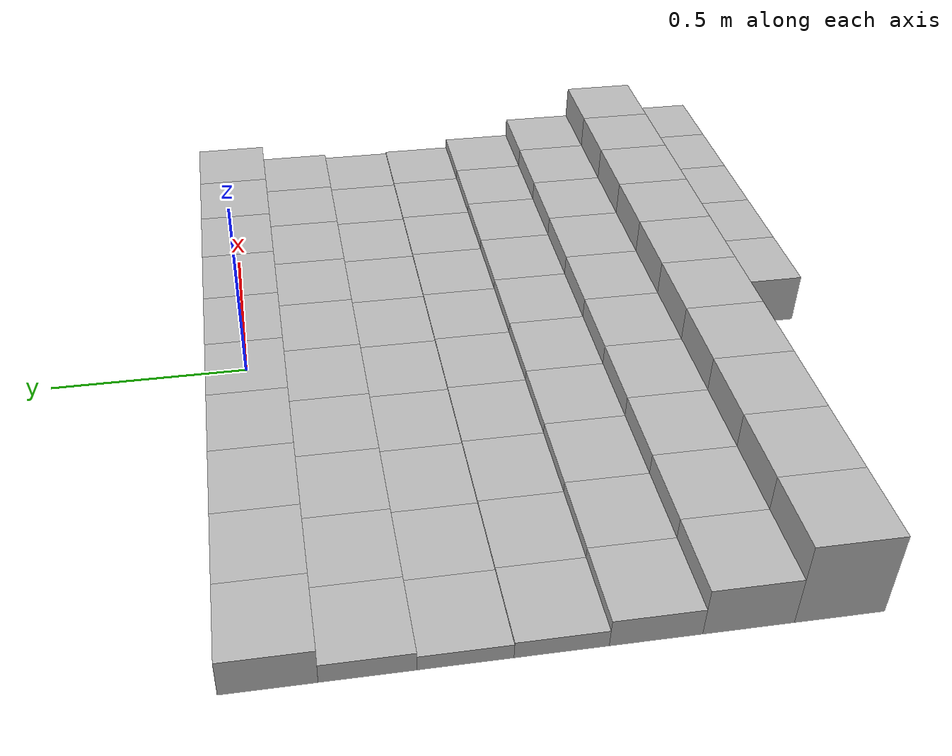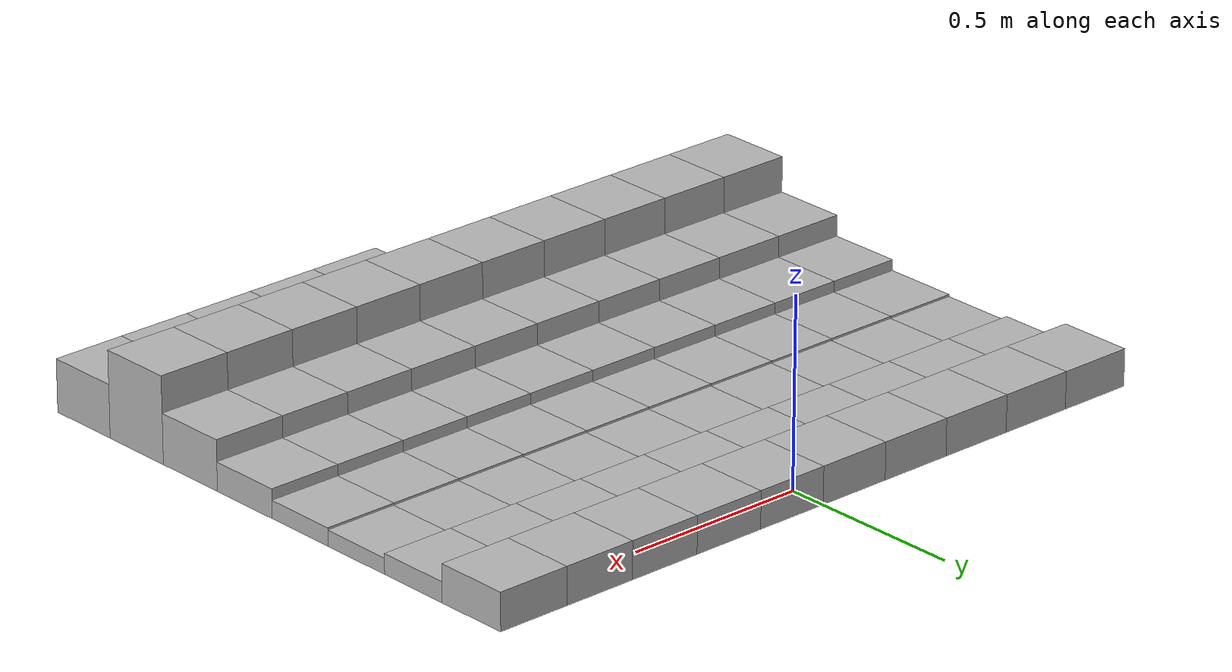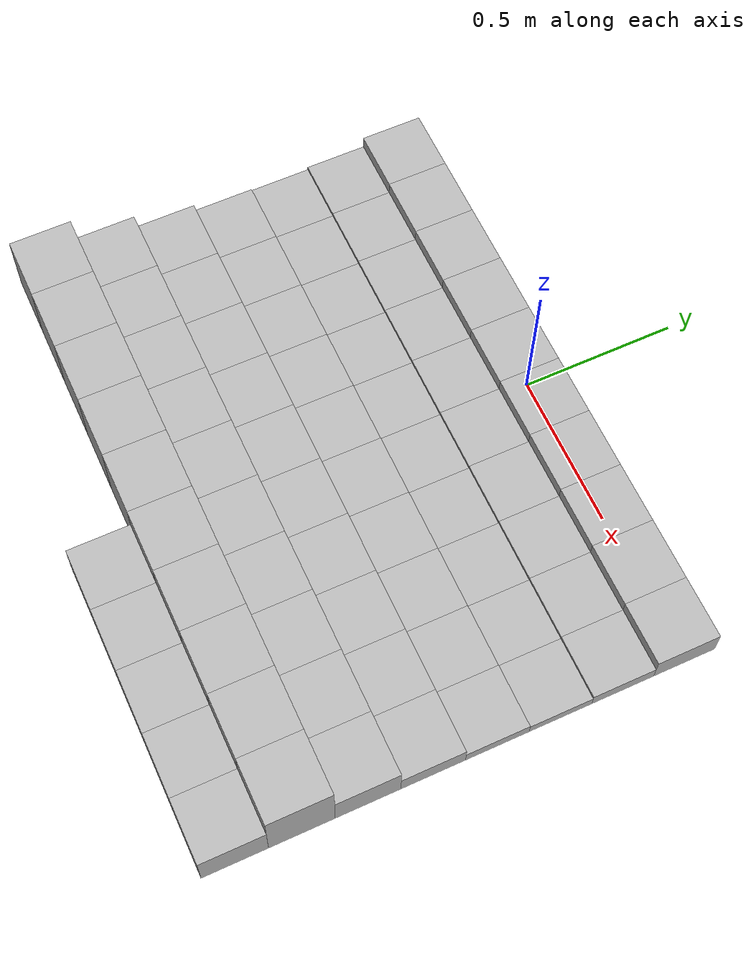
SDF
<sdf version="1.6">
 <model name="Terrain">
  <static>true</static>
  <link name="box_0_0">
   <pose>-0.9 0.0 0.0494981901267 0 0 0</pose>
   <inertial>
    <mass>1.0</mass>
    <inertia><ixx>0.0</ixx><ixy>0.0</ixy><ixz>0.0</ixz><iyy>0.0</iyy><iyz>0.0</iyz><izz>0.0</izz></inertia>
   </inertial>
   <collision name="collision"><geometry><box><size>0.2 0.2 0.0989963802534</size></box></geometry></collision>
   <visual name="visual"><geometry><box><size>0.2 0.2 0.0989963802534</size></box></geometry></visual>
  </link>
  <link name="box_0_1">
   <pose>-0.7 0.0 0.0494981901267 0 0 0</pose>
   <inertial>
    <mass>1.0</mass>
    <inertia><ixx>0.0</ixx><ixy>0.0</ixy><ixz>0.0</ixz><iyy>0.0</iyy><iyz>0.0</iyz><izz>0.0</izz></inertia>
   </inertial>
   <collision name="collision"><geometry><box><size>0.2 0.2 0.0989963802534</size></box></geometry></collision>
   <visual name="visual"><geometry><box><size>0.2 0.2 0.0989963802534</size></box></geometry></visual>
  </link>
  <link name="box_0_2">
   <pose>-0.5 0.0 0.0494981901267 0 0 0</pose>
   <inertial>
    <mass>1.0</mass>
    <inertia><ixx>0.0</ixx><ixy>0.0</ixy><ixz>0.0</ixz><iyy>0.0</iyy><iyz>0.0</iyz><izz>0.0</izz></inertia>
   </inertial>
   <collision name="collision"><geometry><box><size>0.2 0.2 0.0989963802534</size></box></geometry></collision>
   <visual name="visual"><geometry><box><size>0.2 0.2 0.0989963802534</size></box></geometry></visual>
  </link>
  <link name="box_0_3">
   <pose>-0.3 0.0 0.0494981901267 0 0 0</pose>
   <inertial>
    <mass>1.0</mass>
    <inertia><ixx>0.0</ixx><ixy>0.0</ixy><ixz>0.0</ixz><iyy>0.0</iyy><iyz>0.0</iyz><izz>0.0</izz></inertia>
   </inertial>
   <collision name="collision"><geometry><box><size>0.2 0.2 0.0989963802534</size></box></geometry></collision>
   <visual name="visual"><geometry><box><size>0.2 0.2 0.0989963802534</size></box></geometry></visual>
  </link>
  <link name="box_0_4">
   <pose>-0.1 0.0 0.0494981901267 0 0 0</pose>
   <inertial>
    <mass>1.0</mass>
    <inertia><ixx>0.0</ixx><ixy>0.0</ixy><ixz>0.0</ixz><iyy>0.0</iyy><iyz>0.0</iyz><izz>0.0</izz></inertia>
   </inertial>
   <collision name="collision"><geometry><box><size>0.2 0.2 0.0989963802534</size></box></geometry></collision>
   <visual name="visual"><geometry><box><size>0.2 0.2 0.0989963802534</size></box></geometry></visual>
  </link>
  <link name="box_0_5">
   <pose>0.1 0.0 0.0494981901267 0 0 0</pose>
   <inertial>
    <mass>1.0</mass>
    <inertia><ixx>0.0</ixx><ixy>0.0</ixy><ixz>0.0</ixz><iyy>0.0</iyy><iyz>0.0</iyz><izz>0.0</izz></inertia>
   </inertial>
   <collision name="collision"><geometry><box><size>0.2 0.2 0.0989963802534</size></box></geometry></collision>
   <visual name="visual"><geometry><box><size>0.2 0.2 0.0989963802534</size></box></geometry></visual>
  </link>
  <link name="box_0_6">
   <pose>0.3 0.0 0.0494981901267 0 0 0</pose>
   <inertial>
    <mass>1.0</mass>
    <inertia><ixx>0.0</ixx><ixy>0.0</ixy><ixz>0.0</ixz><iyy>0.0</iyy><iyz>0.0</iyz><izz>0.0</izz></inertia>
   </inertial>
   <collision name="collision"><geometry><box><size>0.2 0.2 0.0989963802534</size></box></geometry></collision>
   <visual name="visual"><geometry><box><size>0.2 0.2 0.0989963802534</size></box></geometry></visual>
  </link>
  <link name="box_0_7">
   <pose>0.5 0.0 0.0494981901267 0 0 0</pose>
   <inertial>
    <mass>1.0</mass>
    <inertia><ixx>0.0</ixx><ixy>0.0</ixy><ixz>0.0</ixz><iyy>0.0</iyy><iyz>0.0</iyz><izz>0.0</izz></inertia>
   </inertial>
   <collision name="collision"><geometry><box><size>0.2 0.2 0.0989963802534</size></box></geometry></collision>
   <visual name="visual"><geometry><box><size>0.2 0.2 0.0989963802534</size></box></geometry></visual>
  </link>
  <link name="box_0_8">
   <pose>0.7 0.0 0.0494981901267 0 0 0</pose>
   <inertial>
    <mass>1.0</mass>
    <inertia><ixx>0.0</ixx><ixy>0.0</ixy><ixz>0.0</ixz><iyy>0.0</iyy><iyz>0.0</iyz><izz>0.0</izz></inertia>
   </inertial>
   <collision name="collision"><geometry><box><size>0.2 0.2 0.0989963802534</size></box></geometry></collision>
   <visual name="visual"><geometry><box><size>0.2 0.2 0.0989963802534</size></box></geometry></visual>
  </link>
  <link name="box_0_9">
   <pose>0.9 0.0 0.0494981901267 0 0 0</pose>
   <inertial>
    <mass>1.0</mass>
    <inertia><ixx>0.0</ixx><ixy>0.0</ixy><ixz>0.0</ixz><iyy>0.0</iyy><iyz>0.0</iyz><izz>0.0</izz></inertia>
   </inertial>
   <collision name="collision"><geometry><box><size>0.2 0.2 0.0989963802534</size></box></geometry></collision>
   <visual name="visual"><geometry><box><size>0.2 0.2 0.0989963802534</size></box></geometry></visual>
  </link>
  <link name="box_1_0">
   <pose>-0.9 -0.2 0.0265864980613 0 0 0</pose>
   <inertial>
    <mass>1.0</mass>
    <inertia><ixx>0.0</ixx><ixy>0.0</ixy><ixz>0.0</ixz><iyy>0.0</iyy><iyz>0.0</iyz><izz>0.0</izz></inertia>
   </inertial>
   <collision name="collision"><geometry><box><size>0.2 0.2 0.0531729961226</size></box></geometry></collision>
   <visual name="visual"><geometry><box><size>0.2 0.2 0.0531729961226</size></box></geometry></visual>
  </link>
  <link name="box_1_1">
   <pose>-0.7 -0.2 0.0265864980613 0 0 0</pose>
   <inertial>
    <mass>1.0</mass>
    <inertia><ixx>0.0</ixx><ixy>0.0</ixy><ixz>0.0</ixz><iyy>0.0</iyy><iyz>0.0</iyz><izz>0.0</izz></inertia>
   </inertial>
   <collision name="collision"><geometry><box><size>0.2 0.2 0.0531729961226</size></box></geometry></collision>
   <visual name="visual"><geometry><box><size>0.2 0.2 0.0531729961226</size></box></geometry></visual>
  </link>
  <link name="box_1_2">
   <pose>-0.5 -0.2 0.0265864980613 0 0 0</pose>
   <inertial>
    <mass>1.0</mass>
    <inertia><ixx>0.0</ixx><ixy>0.0</ixy><ixz>0.0</ixz><iyy>0.0</iyy><iyz>0.0</iyz><izz>0.0</izz></inertia>
   </inertial>
   <collision name="collision"><geometry><box><size>0.2 0.2 0.0531729961226</size></box></geometry></collision>
   <visual name="visual"><geometry><box><size>0.2 0.2 0.0531729961226</size></box></geometry></visual>
  </link>
  <link name="box_1_3">
   <pose>-0.3 -0.2 0.0265864980613 0 0 0</pose>
   <inertial>
    <mass>1.0</mass>
    <inertia><ixx>0.0</ixx><ixy>0.0</ixy><ixz>0.0</ixz><iyy>0.0</iyy><iyz>0.0</iyz><izz>0.0</izz></inertia>
   </inertial>
   <collision name="collision"><geometry><box><size>0.2 0.2 0.0531729961226</size></box></geometry></collision>
   <visual name="visual"><geometry><box><size>0.2 0.2 0.0531729961226</size></box></geometry></visual>
  </link>
  <link name="box_1_4">
   <pose>-0.1 -0.2 0.0265864980613 0 0 0</pose>
   <inertial>
    <mass>1.0</mass>
    <inertia><ixx>0.0</ixx><ixy>0.0</ixy><ixz>0.0</ixz><iyy>0.0</iyy><iyz>0.0</iyz><izz>0.0</izz></inertia>
   </inertial>
   <collision name="collision"><geometry><box><size>0.2 0.2 0.0531729961226</size></box></geometry></collision>
   <visual name="visual"><geometry><box><size>0.2 0.2 0.0531729961226</size></box></geometry></visual>
  </link>
  <link name="box_1_5">
   <pose>0.1 -0.2 0.0265864980613 0 0 0</pose>
   <inertial>
    <mass>1.0</mass>
    <inertia><ixx>0.0</ixx><ixy>0.0</ixy><ixz>0.0</ixz><iyy>0.0</iyy><iyz>0.0</iyz><izz>0.0</izz></inertia>
   </inertial>
   <collision name="collision"><geometry><box><size>0.2 0.2 0.0531729961226</size></box></geometry></collision>
   <visual name="visual"><geometry><box><size>0.2 0.2 0.0531729961226</size></box></geometry></visual>
  </link>
  <link name="box_1_6">
   <pose>0.3 -0.2 0.0265864980613 0 0 0</pose>
   <inertial>
    <mass>1.0</mass>
    <inertia><ixx>0.0</ixx><ixy>0.0</ixy><ixz>0.0</ixz><iyy>0.0</iyy><iyz>0.0</iyz><izz>0.0</izz></inertia>
   </inertial>
   <collision name="collision"><geometry><box><size>0.2 0.2 0.0531729961226</size></box></geometry></collision>
   <visual name="visual"><geometry><box><size>0.2 0.2 0.0531729961226</size></box></geometry></visual>
  </link>
  <link name="box_1_7">
   <pose>0.5 -0.2 0.0265864980613 0 0 0</pose>
   <inertial>
    <mass>1.0</mass>
    <inertia><ixx>0.0</ixx><ixy>0.0</ixy><ixz>0.0</ixz><iyy>0.0</iyy><iyz>0.0</iyz><izz>0.0</izz></inertia>
   </inertial>
   <collision name="collision"><geometry><box><size>0.2 0.2 0.0531729961226</size></box></geometry></collision>
   <visual name="visual"><geometry><box><size>0.2 0.2 0.0531729961226</size></box></geometry></visual>
  </link>
  <link name="box_1_8">
   <pose>0.7 -0.2 0.0265864980613 0 0 0</pose>
   <inertial>
    <mass>1.0</mass>
    <inertia><ixx>0.0</ixx><ixy>0.0</ixy><ixz>0.0</ixz><iyy>0.0</iyy><iyz>0.0</iyz><izz>0.0</izz></inertia>
   </inertial>
   <collision name="collision"><geometry><box><size>0.2 0.2 0.0531729961226</size></box></geometry></collision>
   <visual name="visual"><geometry><box><size>0.2 0.2 0.0531729961226</size></box></geometry></visual>
  </link>
  <link name="box_1_9">
   <pose>0.9 -0.2 0.0265864980613 0 0 0</pose>
   <inertial>
    <mass>1.0</mass>
    <inertia><ixx>0.0</ixx><ixy>0.0</ixy><ixz>0.0</ixz><iyy>0.0</iyy><iyz>0.0</iyz><izz>0.0</izz></inertia>
   </inertial>
   <collision name="collision"><geometry><box><size>0.2 0.2 0.0531729961226</size></box></geometry></collision>
   <visual name="visual"><geometry><box><size>0.2 0.2 0.0531729961226</size></box></geometry></visual>
  </link>
  <link name="box_2_0">
   <pose>-0.9 -0.4 0.020622142568 0 0 0</pose>
   <inertial>
    <mass>1.0</mass>
    <inertia><ixx>0.0</ixx><ixy>0.0</ixy><ixz>0.0</ixz><iyy>0.0</iyy><iyz>0.0</iyz><izz>0.0</izz></inertia>
   </inertial>
   <collision name="collision"><geometry><box><size>0.2 0.2 0.041244285136</size></box></geometry></collision>
   <visual name="visual"><geometry><box><size>0.2 0.2 0.041244285136</size></box></geometry></visual>
  </link>
  <link name="box_2_1">
   <pose>-0.7 -0.4 0.020622142568 0 0 0</pose>
   <inertial>
    <mass>1.0</mass>
    <inertia><ixx>0.0</ixx><ixy>0.0</ixy><ixz>0.0</ixz><iyy>0.0</iyy><iyz>0.0</iyz><izz>0.0</izz></inertia>
   </inertial>
   <collision name="collision"><geometry><box><size>0.2 0.2 0.041244285136</size></box></geometry></collision>
   <visual name="visual"><geometry><box><size>0.2 0.2 0.041244285136</size></box></geometry></visual>
  </link>
  <link name="box_2_2">
   <pose>-0.5 -0.4 0.020622142568 0 0 0</pose>
   <inertial>
    <mass>1.0</mass>
    <inertia><ixx>0.0</ixx><ixy>0.0</ixy><ixz>0.0</ixz><iyy>0.0</iyy><iyz>0.0</iyz><izz>0.0</izz></inertia>
   </inertial>
   <collision name="collision"><geometry><box><size>0.2 0.2 0.041244285136</size></box></geometry></collision>
   <visual name="visual"><geometry><box><size>0.2 0.2 0.041244285136</size></box></geometry></visual>
  </link>
  <link name="box_2_3">
   <pose>-0.3 -0.4 0.020622142568 0 0 0</pose>
   <inertial>
    <mass>1.0</mass>
    <inertia><ixx>0.0</ixx><ixy>0.0</ixy><ixz>0.0</ixz><iyy>0.0</iyy><iyz>0.0</iyz><izz>0.0</izz></inertia>
   </inertial>
   <collision name="collision"><geometry><box><size>0.2 0.2 0.041244285136</size></box></geometry></collision>
   <visual name="visual"><geometry><box><size>0.2 0.2 0.041244285136</size></box></geometry></visual>
  </link>
  <link name="box_2_4">
   <pose>-0.1 -0.4 0.020622142568 0 0 0</pose>
   <inertial>
    <mass>1.0</mass>
    <inertia><ixx>0.0</ixx><ixy>0.0</ixy><ixz>0.0</ixz><iyy>0.0</iyy><iyz>0.0</iyz><izz>0.0</izz></inertia>
   </inertial>
   <collision name="collision"><geometry><box><size>0.2 0.2 0.041244285136</size></box></geometry></collision>
   <visual name="visual"><geometry><box><size>0.2 0.2 0.041244285136</size></box></geometry></visual>
  </link>
  <link name="box_2_5">
   <pose>0.1 -0.4 0.020622142568 0 0 0</pose>
   <inertial>
    <mass>1.0</mass>
    <inertia><ixx>0.0</ixx><ixy>0.0</ixy><ixz>0.0</ixz><iyy>0.0</iyy><iyz>0.0</iyz><izz>0.0</izz></inertia>
   </inertial>
   <collision name="collision"><geometry><box><size>0.2 0.2 0.041244285136</size></box></geometry></collision>
   <visual name="visual"><geometry><box><size>0.2 0.2 0.041244285136</size></box></geometry></visual>
  </link>
  <link name="box_2_6">
   <pose>0.3 -0.4 0.020622142568 0 0 0</pose>
   <inertial>
    <mass>1.0</mass>
    <inertia><ixx>0.0</ixx><ixy>0.0</ixy><ixz>0.0</ixz><iyy>0.0</iyy><iyz>0.0</iyz><izz>0.0</izz></inertia>
   </inertial>
   <collision name="collision"><geometry><box><size>0.2 0.2 0.041244285136</size></box></geometry></collision>
   <visual name="visual"><geometry><box><size>0.2 0.2 0.041244285136</size></box></geometry></visual>
  </link>
  <link name="box_2_7">
   <pose>0.5 -0.4 0.020622142568 0 0 0</pose>
   <inertial>
    <mass>1.0</mass>
    <inertia><ixx>0.0</ixx><ixy>0.0</ixy><ixz>0.0</ixz><iyy>0.0</iyy><iyz>0.0</iyz><izz>0.0</izz></inertia>
   </inertial>
   <collision name="collision"><geometry><box><size>0.2 0.2 0.041244285136</size></box></geometry></collision>
   <visual name="visual"><geometry><box><size>0.2 0.2 0.041244285136</size></box></geometry></visual>
  </link>
  <link name="box_2_8">
   <pose>0.7 -0.4 0.020622142568 0 0 0</pose>
   <inertial>
    <mass>1.0</mass>
    <inertia><ixx>0.0</ixx><ixy>0.0</ixy><ixz>0.0</ixz><iyy>0.0</iyy><iyz>0.0</iyz><izz>0.0</izz></inertia>
   </inertial>
   <collision name="collision"><geometry><box><size>0.2 0.2 0.041244285136</size></box></geometry></collision>
   <visual name="visual"><geometry><box><size>0.2 0.2 0.041244285136</size></box></geometry></visual>
  </link>
  <link name="box_2_9">
   <pose>0.9 -0.4 0.020622142568 0 0 0</pose>
   <inertial>
    <mass>1.0</mass>
    <inertia><ixx>0.0</ixx><ixy>0.0</ixy><ixz>0.0</ixz><iyy>0.0</iyy><iyz>0.0</iyz><izz>0.0</izz></inertia>
   </inertial>
   <collision name="collision"><geometry><box><size>0.2 0.2 0.041244285136</size></box></geometry></collision>
   <visual name="visual"><geometry><box><size>0.2 0.2 0.041244285136</size></box></geometry></visual>
  </link>
  <link name="box_3_0">
   <pose>-0.9 -0.6 0.023450300779 0 0 0</pose>
   <inertial>
    <mass>1.0</mass>
    <inertia><ixx>0.0</ixx><ixy>0.0</ixy><ixz>0.0</ixz><iyy>0.0</iyy><iyz>0.0</iyz><izz>0.0</izz></inertia>
   </inertial>
   <collision name="collision"><geometry><box><size>0.2 0.2 0.0469006015579</size></box></geometry></collision>
   <visual name="visual"><geometry><box><size>0.2 0.2 0.0469006015579</size></box></geometry></visual>
  </link>
  <link name="box_3_1">
   <pose>-0.7 -0.6 0.023450300779 0 0 0</pose>
   <inertial>
    <mass>1.0</mass>
    <inertia><ixx>0.0</ixx><ixy>0.0</ixy><ixz>0.0</ixz><iyy>0.0</iyy><iyz>0.0</iyz><izz>0.0</izz></inertia>
   </inertial>
   <collision name="collision"><geometry><box><size>0.2 0.2 0.0469006015579</size></box></geometry></collision>
   <visual name="visual"><geometry><box><size>0.2 0.2 0.0469006015579</size></box></geometry></visual>
  </link>
  <link name="box_3_2">
   <pose>-0.5 -0.6 0.023450300779 0 0 0</pose>
   <inertial>
    <mass>1.0</mass>
    <inertia><ixx>0.0</ixx><ixy>0.0</ixy><ixz>0.0</ixz><iyy>0.0</iyy><iyz>0.0</iyz><izz>0.0</izz></inertia>
   </inertial>
   <collision name="collision"><geometry><box><size>0.2 0.2 0.0469006015579</size></box></geometry></collision>
   <visual name="visual"><geometry><box><size>0.2 0.2 0.0469006015579</size></box></geometry></visual>
  </link>
  <link name="box_3_3">
   <pose>-0.3 -0.6 0.023450300779 0 0 0</pose>
   <inertial>
    <mass>1.0</mass>
    <inertia><ixx>0.0</ixx><ixy>0.0</ixy><ixz>0.0</ixz><iyy>0.0</iyy><iyz>0.0</iyz><izz>0.0</izz></inertia>
   </inertial>
   <collision name="collision"><geometry><box><size>0.2 0.2 0.0469006015579</size></box></geometry></collision>
   <visual name="visual"><geometry><box><size>0.2 0.2 0.0469006015579</size></box></geometry></visual>
  </link>
  <link name="box_3_4">
   <pose>-0.1 -0.6 0.023450300779 0 0 0</pose>
   <inertial>
    <mass>1.0</mass>
    <inertia><ixx>0.0</ixx><ixy>0.0</ixy><ixz>0.0</ixz><iyy>0.0</iyy><iyz>0.0</iyz><izz>0.0</izz></inertia>
   </inertial>
   <collision name="collision"><geometry><box><size>0.2 0.2 0.0469006015579</size></box></geometry></collision>
   <visual name="visual"><geometry><box><size>0.2 0.2 0.0469006015579</size></box></geometry></visual>
  </link>
  <link name="box_3_5">
   <pose>0.1 -0.6 0.023450300779 0 0 0</pose>
   <inertial>
    <mass>1.0</mass>
    <inertia><ixx>0.0</ixx><ixy>0.0</ixy><ixz>0.0</ixz><iyy>0.0</iyy><iyz>0.0</iyz><izz>0.0</izz></inertia>
   </inertial>
   <collision name="collision"><geometry><box><size>0.2 0.2 0.0469006015579</size></box></geometry></collision>
   <visual name="visual"><geometry><box><size>0.2 0.2 0.0469006015579</size></box></geometry></visual>
  </link>
  <link name="box_3_6">
   <pose>0.3 -0.6 0.023450300779 0 0 0</pose>
   <inertial>
    <mass>1.0</mass>
    <inertia><ixx>0.0</ixx><ixy>0.0</ixy><ixz>0.0</ixz><iyy>0.0</iyy><iyz>0.0</iyz><izz>0.0</izz></inertia>
   </inertial>
   <collision name="collision"><geometry><box><size>0.2 0.2 0.0469006015579</size></box></geometry></collision>
   <visual name="visual"><geometry><box><size>0.2 0.2 0.0469006015579</size></box></geometry></visual>
  </link>
  <link name="box_3_7">
   <pose>0.5 -0.6 0.023450300779 0 0 0</pose>
   <inertial>
    <mass>1.0</mass>
    <inertia><ixx>0.0</ixx><ixy>0.0</ixy><ixz>0.0</ixz><iyy>0.0</iyy><iyz>0.0</iyz><izz>0.0</izz></inertia>
   </inertial>
   <collision name="collision"><geometry><box><size>0.2 0.2 0.0469006015579</size></box></geometry></collision>
   <visual name="visual"><geometry><box><size>0.2 0.2 0.0469006015579</size></box></geometry></visual>
  </link>
  <link name="box_3_8">
   <pose>0.7 -0.6 0.023450300779 0 0 0</pose>
   <inertial>
    <mass>1.0</mass>
    <inertia><ixx>0.0</ixx><ixy>0.0</ixy><ixz>0.0</ixz><iyy>0.0</iyy><iyz>0.0</iyz><izz>0.0</izz></inertia>
   </inertial>
   <collision name="collision"><geometry><box><size>0.2 0.2 0.0469006015579</size></box></geometry></collision>
   <visual name="visual"><geometry><box><size>0.2 0.2 0.0469006015579</size></box></geometry></visual>
  </link>
  <link name="box_3_9">
   <pose>0.9 -0.6 0.023450300779 0 0 0</pose>
   <inertial>
    <mass>1.0</mass>
    <inertia><ixx>0.0</ixx><ixy>0.0</ixy><ixz>0.0</ixz><iyy>0.0</iyy><iyz>0.0</iyz><izz>0.0</izz></inertia>
   </inertial>
   <collision name="collision"><geometry><box><size>0.2 0.2 0.0469006015579</size></box></geometry></collision>
   <visual name="visual"><geometry><box><size>0.2 0.2 0.0469006015579</size></box></geometry></visual>
  </link>
  <link name="box_4_0">
   <pose>-0.9 -0.8 0.0380624653209 0 0 0</pose>
   <inertial>
    <mass>1.0</mass>
    <inertia><ixx>0.0</ixx><ixy>0.0</ixy><ixz>0.0</ixz><iyy>0.0</iyy><iyz>0.0</iyz><izz>0.0</izz></inertia>
   </inertial>
   <collision name="collision"><geometry><box><size>0.2 0.2 0.0761249306417</size></box></geometry></collision>
   <visual name="visual"><geometry><box><size>0.2 0.2 0.0761249306417</size></box></geometry></visual>
  </link>
  <link name="box_4_1">
   <pose>-0.7 -0.8 0.0380624653209 0 0 0</pose>
   <inertial>
    <mass>1.0</mass>
    <inertia><ixx>0.0</ixx><ixy>0.0</ixy><ixz>0.0</ixz><iyy>0.0</iyy><iyz>0.0</iyz><izz>0.0</izz></inertia>
   </inertial>
   <collision name="collision"><geometry><box><size>0.2 0.2 0.0761249306417</size></box></geometry></collision>
   <visual name="visual"><geometry><box><size>0.2 0.2 0.0761249306417</size></box></geometry></visual>
  </link>
  <link name="box_4_2">
   <pose>-0.5 -0.8 0.0380624653209 0 0 0</pose>
   <inertial>
    <mass>1.0</mass>
    <inertia><ixx>0.0</ixx><ixy>0.0</ixy><ixz>0.0</ixz><iyy>0.0</iyy><iyz>0.0</iyz><izz>0.0</izz></inertia>
   </inertial>
   <collision name="collision"><geometry><box><size>0.2 0.2 0.0761249306417</size></box></geometry></collision>
   <visual name="visual"><geometry><box><size>0.2 0.2 0.0761249306417</size></box></geometry></visual>
  </link>
  <link name="box_4_3">
   <pose>-0.3 -0.8 0.0380624653209 0 0 0</pose>
   <inertial>
    <mass>1.0</mass>
    <inertia><ixx>0.0</ixx><ixy>0.0</ixy><ixz>0.0</ixz><iyy>0.0</iyy><iyz>0.0</iyz><izz>0.0</izz></inertia>
   </inertial>
   <collision name="collision"><geometry><box><size>0.2 0.2 0.0761249306417</size></box></geometry></collision>
   <visual name="visual"><geometry><box><size>0.2 0.2 0.0761249306417</size></box></geometry></visual>
  </link>
  <link name="box_4_4">
   <pose>-0.1 -0.8 0.0380624653209 0 0 0</pose>
   <inertial>
    <mass>1.0</mass>
    <inertia><ixx>0.0</ixx><ixy>0.0</ixy><ixz>0.0</ixz><iyy>0.0</iyy><iyz>0.0</iyz><izz>0.0</izz></inertia>
   </inertial>
   <collision name="collision"><geometry><box><size>0.2 0.2 0.0761249306417</size></box></geometry></collision>
   <visual name="visual"><geometry><box><size>0.2 0.2 0.0761249306417</size></box></geometry></visual>
  </link>
  <link name="box_4_5">
   <pose>0.1 -0.8 0.0380624653209 0 0 0</pose>
   <inertial>
    <mass>1.0</mass>
    <inertia><ixx>0.0</ixx><ixy>0.0</ixy><ixz>0.0</ixz><iyy>0.0</iyy><iyz>0.0</iyz><izz>0.0</izz></inertia>
   </inertial>
   <collision name="collision"><geometry><box><size>0.2 0.2 0.0761249306417</size></box></geometry></collision>
   <visual name="visual"><geometry><box><size>0.2 0.2 0.0761249306417</size></box></geometry></visual>
  </link>
  <link name="box_4_6">
   <pose>0.3 -0.8 0.0380624653209 0 0 0</pose>
   <inertial>
    <mass>1.0</mass>
    <inertia><ixx>0.0</ixx><ixy>0.0</ixy><ixz>0.0</ixz><iyy>0.0</iyy><iyz>0.0</iyz><izz>0.0</izz></inertia>
   </inertial>
   <collision name="collision"><geometry><box><size>0.2 0.2 0.0761249306417</size></box></geometry></collision>
   <visual name="visual"><geometry><box><size>0.2 0.2 0.0761249306417</size></box></geometry></visual>
  </link>
  <link name="box_4_7">
   <pose>0.5 -0.8 0.0380624653209 0 0 0</pose>
   <inertial>
    <mass>1.0</mass>
    <inertia><ixx>0.0</ixx><ixy>0.0</ixy><ixz>0.0</ixz><iyy>0.0</iyy><iyz>0.0</iyz><izz>0.0</izz></inertia>
   </inertial>
   <collision name="collision"><geometry><box><size>0.2 0.2 0.0761249306417</size></box></geometry></collision>
   <visual name="visual"><geometry><box><size>0.2 0.2 0.0761249306417</size></box></geometry></visual>
  </link>
  <link name="box_4_8">
   <pose>0.7 -0.8 0.0380624653209 0 0 0</pose>
   <inertial>
    <mass>1.0</mass>
    <inertia><ixx>0.0</ixx><ixy>0.0</ixy><ixz>0.0</ixz><iyy>0.0</iyy><iyz>0.0</iyz><izz>0.0</izz></inertia>
   </inertial>
   <collision name="collision"><geometry><box><size>0.2 0.2 0.0761249306417</size></box></geometry></collision>
   <visual name="visual"><geometry><box><size>0.2 0.2 0.0761249306417</size></box></geometry></visual>
  </link>
  <link name="box_4_9">
   <pose>0.9 -0.8 0.0380624653209 0 0 0</pose>
   <inertial>
    <mass>1.0</mass>
    <inertia><ixx>0.0</ixx><ixy>0.0</ixy><ixz>0.0</ixz><iyy>0.0</iyy><iyz>0.0</iyz><izz>0.0</izz></inertia>
   </inertial>
   <collision name="collision"><geometry><box><size>0.2 0.2 0.0761249306417</size></box></geometry></collision>
   <visual name="visual"><geometry><box><size>0.2 0.2 0.0761249306417</size></box></geometry></visual>
  </link>
  <link name="box_5_0">
   <pose>-0.9 -1.0 0.0664592636338 0 0 0</pose>
   <inertial>
    <mass>1.0</mass>
    <inertia><ixx>0.0</ixx><ixy>0.0</ixy><ixz>0.0</ixz><iyy>0.0</iyy><iyz>0.0</iyz><izz>0.0</izz></inertia>
   </inertial>
   <collision name="collision"><geometry><box><size>0.2 0.2 0.132918527268</size></box></geometry></collision>
   <visual name="visual"><geometry><box><size>0.2 0.2 0.132918527268</size></box></geometry></visual>
  </link>
  <link name="box_5_1">
   <pose>-0.7 -1.0 0.0664592636338 0 0 0</pose>
   <inertial>
    <mass>1.0</mass>
    <inertia><ixx>0.0</ixx><ixy>0.0</ixy><ixz>0.0</ixz><iyy>0.0</iyy><iyz>0.0</iyz><izz>0.0</izz></inertia>
   </inertial>
   <collision name="collision"><geometry><box><size>0.2 0.2 0.132918527268</size></box></geometry></collision>
   <visual name="visual"><geometry><box><size>0.2 0.2 0.132918527268</size></box></geometry></visual>
  </link>
  <link name="box_5_2">
   <pose>-0.5 -1.0 0.0664592636338 0 0 0</pose>
   <inertial>
    <mass>1.0</mass>
    <inertia><ixx>0.0</ixx><ixy>0.0</ixy><ixz>0.0</ixz><iyy>0.0</iyy><iyz>0.0</iyz><izz>0.0</izz></inertia>
   </inertial>
   <collision name="collision"><geometry><box><size>0.2 0.2 0.132918527268</size></box></geometry></collision>
   <visual name="visual"><geometry><box><size>0.2 0.2 0.132918527268</size></box></geometry></visual>
  </link>
  <link name="box_5_3">
   <pose>-0.3 -1.0 0.0664592636338 0 0 0</pose>
   <inertial>
    <mass>1.0</mass>
    <inertia><ixx>0.0</ixx><ixy>0.0</ixy><ixz>0.0</ixz><iyy>0.0</iyy><iyz>0.0</iyz><izz>0.0</izz></inertia>
   </inertial>
   <collision name="collision"><geometry><box><size>0.2 0.2 0.132918527268</size></box></geometry></collision>
   <visual name="visual"><geometry><box><size>0.2 0.2 0.132918527268</size></box></geometry></visual>
  </link>
  <link name="box_5_4">
   <pose>-0.1 -1.0 0.0664592636338 0 0 0</pose>
   <inertial>
    <mass>1.0</mass>
    <inertia><ixx>0.0</ixx><ixy>0.0</ixy><ixz>0.0</ixz><iyy>0.0</iyy><iyz>0.0</iyz><izz>0.0</izz></inertia>
   </inertial>
   <collision name="collision"><geometry><box><size>0.2 0.2 0.132918527268</size></box></geometry></collision>
   <visual name="visual"><geometry><box><size>0.2 0.2 0.132918527268</size></box></geometry></visual>
  </link>
  <link name="box_5_5">
   <pose>0.1 -1.0 0.0664592636338 0 0 0</pose>
   <inertial>
    <mass>1.0</mass>
    <inertia><ixx>0.0</ixx><ixy>0.0</ixy><ixz>0.0</ixz><iyy>0.0</iyy><iyz>0.0</iyz><izz>0.0</izz></inertia>
   </inertial>
   <collision name="collision"><geometry><box><size>0.2 0.2 0.132918527268</size></box></geometry></collision>
   <visual name="visual"><geometry><box><size>0.2 0.2 0.132918527268</size></box></geometry></visual>
  </link>
  <link name="box_5_6">
   <pose>0.3 -1.0 0.0664592636338 0 0 0</pose>
   <inertial>
    <mass>1.0</mass>
    <inertia><ixx>0.0</ixx><ixy>0.0</ixy><ixz>0.0</ixz><iyy>0.0</iyy><iyz>0.0</iyz><izz>0.0</izz></inertia>
   </inertial>
   <collision name="collision"><geometry><box><size>0.2 0.2 0.132918527268</size></box></geometry></collision>
   <visual name="visual"><geometry><box><size>0.2 0.2 0.132918527268</size></box></geometry></visual>
  </link>
  <link name="box_5_7">
   <pose>0.5 -1.0 0.0664592636338 0 0 0</pose>
   <inertial>
    <mass>1.0</mass>
    <inertia><ixx>0.0</ixx><ixy>0.0</ixy><ixz>0.0</ixz><iyy>0.0</iyy><iyz>0.0</iyz><izz>0.0</izz></inertia>
   </inertial>
   <collision name="collision"><geometry><box><size>0.2 0.2 0.132918527268</size></box></geometry></collision>
   <visual name="visual"><geometry><box><size>0.2 0.2 0.132918527268</size></box></geometry></visual>
  </link>
  <link name="box_5_8">
   <pose>0.7 -1.0 0.0664592636338 0 0 0</pose>
   <inertial>
    <mass>1.0</mass>
    <inertia><ixx>0.0</ixx><ixy>0.0</ixy><ixz>0.0</ixz><iyy>0.0</iyy><iyz>0.0</iyz><izz>0.0</izz></inertia>
   </inertial>
   <collision name="collision"><geometry><box><size>0.2 0.2 0.132918527268</size></box></geometry></collision>
   <visual name="visual"><geometry><box><size>0.2 0.2 0.132918527268</size></box></geometry></visual>
  </link>
  <link name="box_5_9">
   <pose>0.9 -1.0 0.0664592636338 0 0 0</pose>
   <inertial>
    <mass>1.0</mass>
    <inertia><ixx>0.0</ixx><ixy>0.0</ixy><ixz>0.0</ixz><iyy>0.0</iyy><iyz>0.0</iyz><izz>0.0</izz></inertia>
   </inertial>
   <collision name="collision"><geometry><box><size>0.2 0.2 0.132918527268</size></box></geometry></collision>
   <visual name="visual"><geometry><box><size>0.2 0.2 0.132918527268</size></box></geometry></visual>
  </link>
  <link name="box_6_0">
   <pose>-0.9 -1.2 0.114554445123 0 0 0</pose>
   <inertial>
    <mass>1.0</mass>
    <inertia><ixx>0.0</ixx><ixy>0.0</ixy><ixz>0.0</ixz><iyy>0.0</iyy><iyz>0.0</iyz><izz>0.0</izz></inertia>
   </inertial>
   <collision name="collision"><geometry><box><size>0.2 0.2 0.229108890246</size></box></geometry></collision>
   <visual name="visual"><geometry><box><size>0.2 0.2 0.229108890246</size></box></geometry></visual>
  </link>
  <link name="box_6_1">
   <pose>-0.7 -1.2 0.114554445123 0 0 0</pose>
   <inertial>
    <mass>1.0</mass>
    <inertia><ixx>0.0</ixx><ixy>0.0</ixy><ixz>0.0</ixz><iyy>0.0</iyy><iyz>0.0</iyz><izz>0.0</izz></inertia>
   </inertial>
   <collision name="collision"><geometry><box><size>0.2 0.2 0.229108890246</size></box></geometry></collision>
   <visual name="visual"><geometry><box><size>0.2 0.2 0.229108890246</size></box></geometry></visual>
  </link>
  <link name="box_6_2">
   <pose>-0.5 -1.2 0.114554445123 0 0 0</pose>
   <inertial>
    <mass>1.0</mass>
    <inertia><ixx>0.0</ixx><ixy>0.0</ixy><ixz>0.0</ixz><iyy>0.0</iyy><iyz>0.0</iyz><izz>0.0</izz></inertia>
   </inertial>
   <collision name="collision"><geometry><box><size>0.2 0.2 0.229108890246</size></box></geometry></collision>
   <visual name="visual"><geometry><box><size>0.2 0.2 0.229108890246</size></box></geometry></visual>
  </link>
  <link name="box_6_3">
   <pose>-0.3 -1.2 0.114554445123 0 0 0</pose>
   <inertial>
    <mass>1.0</mass>
    <inertia><ixx>0.0</ixx><ixy>0.0</ixy><ixz>0.0</ixz><iyy>0.0</iyy><iyz>0.0</iyz><izz>0.0</izz></inertia>
   </inertial>
   <collision name="collision"><geometry><box><size>0.2 0.2 0.229108890246</size></box></geometry></collision>
   <visual name="visual"><geometry><box><size>0.2 0.2 0.229108890246</size></box></geometry></visual>
  </link>
  <link name="box_6_4">
   <pose>-0.1 -1.2 0.114554445123 0 0 0</pose>
   <inertial>
    <mass>1.0</mass>
    <inertia><ixx>0.0</ixx><ixy>0.0</ixy><ixz>0.0</ixz><iyy>0.0</iyy><iyz>0.0</iyz><izz>0.0</izz></inertia>
   </inertial>
   <collision name="collision"><geometry><box><size>0.2 0.2 0.229108890246</size></box></geometry></collision>
   <visual name="visual"><geometry><box><size>0.2 0.2 0.229108890246</size></box></geometry></visual>
  </link>
  <link name="box_6_5">
   <pose>0.1 -1.2 0.114554445123 0 0 0</pose>
   <inertial>
    <mass>1.0</mass>
    <inertia><ixx>0.0</ixx><ixy>0.0</ixy><ixz>0.0</ixz><iyy>0.0</iyy><iyz>0.0</iyz><izz>0.0</izz></inertia>
   </inertial>
   <collision name="collision"><geometry><box><size>0.2 0.2 0.229108890246</size></box></geometry></collision>
   <visual name="visual"><geometry><box><size>0.2 0.2 0.229108890246</size></box></geometry></visual>
  </link>
  <link name="box_6_6">
   <pose>0.3 -1.2 0.114554445123 0 0 0</pose>
   <inertial>
    <mass>1.0</mass>
    <inertia><ixx>0.0</ixx><ixy>0.0</ixy><ixz>0.0</ixz><iyy>0.0</iyy><iyz>0.0</iyz><izz>0.0</izz></inertia>
   </inertial>
   <collision name="collision"><geometry><box><size>0.2 0.2 0.229108890246</size></box></geometry></collision>
   <visual name="visual"><geometry><box><size>0.2 0.2 0.229108890246</size></box></geometry></visual>
  </link>
  <link name="box_6_7">
   <pose>0.5 -1.2 0.114554445123 0 0 0</pose>
   <inertial>
    <mass>1.0</mass>
    <inertia><ixx>0.0</ixx><ixy>0.0</ixy><ixz>0.0</ixz><iyy>0.0</iyy><iyz>0.0</iyz><izz>0.0</izz></inertia>
   </inertial>
   <collision name="collision"><geometry><box><size>0.2 0.2 0.229108890246</size></box></geometry></collision>
   <visual name="visual"><geometry><box><size>0.2 0.2 0.229108890246</size></box></geometry></visual>
  </link>
  <link name="box_6_8">
   <pose>0.7 -1.2 0.114554445123 0 0 0</pose>
   <inertial>
    <mass>1.0</mass>
    <inertia><ixx>0.0</ixx><ixy>0.0</ixy><ixz>0.0</ixz><iyy>0.0</iyy><iyz>0.0</iyz><izz>0.0</izz></inertia>
   </inertial>
   <collision name="collision"><geometry><box><size>0.2 0.2 0.229108890246</size></box></geometry></collision>
   <visual name="visual"><geometry><box><size>0.2 0.2 0.229108890246</size></box></geometry></visual>
  </link>
  <link name="box_6_9">
   <pose>0.9 -1.2 0.114554445123 0 0 0</pose>
   <inertial>
    <mass>1.0</mass>
    <inertia><ixx>0.0</ixx><ixy>0.0</ixy><ixz>0.0</ixz><iyy>0.0</iyy><iyz>0.0</iyz><izz>0.0</izz></inertia>
   </inertial>
   <collision name="collision"><geometry><box><size>0.2 0.2 0.229108890246</size></box></geometry></collision>
   <visual name="visual"><geometry><box><size>0.2 0.2 0.229108890246</size></box></geometry></visual>
  </link>
  <link name="box_7_5">
   <pose>0.1 -1.4 0.0700994147402 0 0 0</pose>
   <inertial>
    <mass>1.0</mass>
    <inertia><ixx>0.0</ixx><ixy>0.0</ixy><ixz>0.0</ixz><iyy>0.0</iyy><iyz>0.0</iyz><izz>0.0</izz></inertia>
   </inertial>
   <collision name="collision"><geometry><box><size>0.2 0.2 0.14019882948</size></box></geometry></collision>
   <visual name="visual"><geometry><box><size>0.2 0.2 0.14019882948</size></box></geometry></visual>
  </link>
  <link name="box_7_6">
   <pose>0.3 -1.4 0.0700994147402 0 0 0</pose>
   <inertial>
    <mass>1.0</mass>
    <inertia><ixx>0.0</ixx><ixy>0.0</ixy><ixz>0.0</ixz><iyy>0.0</iyy><iyz>0.0</iyz><izz>0.0</izz></inertia>
   </inertial>
   <collision name="collision"><geometry><box><size>0.2 0.2 0.14019882948</size></box></geometry></collision>
   <visual name="visual"><geometry><box><size>0.2 0.2 0.14019882948</size></box></geometry></visual>
  </link>
  <link name="box_7_7">
   <pose>0.5 -1.4 0.0700994147402 0 0 0</pose>
   <inertial>
    <mass>1.0</mass>
    <inertia><ixx>0.0</ixx><ixy>0.0</ixy><ixz>0.0</ixz><iyy>0.0</iyy><iyz>0.0</iyz><izz>0.0</izz></inertia>
   </inertial>
   <collision name="collision"><geometry><box><size>0.2 0.2 0.14019882948</size></box></geometry></collision>
   <visual name="visual"><geometry><box><size>0.2 0.2 0.14019882948</size></box></geometry></visual>
  </link>
  <link name="box_7_8">
   <pose>0.7 -1.4 0.0700994147402 0 0 0</pose>
   <inertial>
    <mass>1.0</mass>
    <inertia><ixx>0.0</ixx><ixy>0.0</ixy><ixz>0.0</ixz><iyy>0.0</iyy><iyz>0.0</iyz><izz>0.0</izz></inertia>
   </inertial>
   <collision name="collision"><geometry><box><size>0.2 0.2 0.14019882948</size></box></geometry></collision>
   <visual name="visual"><geometry><box><size>0.2 0.2 0.14019882948</size></box></geometry></visual>
  </link>
  <link name="box_7_9">
   <pose>0.9 -1.4 0.0700994147402 0 0 0</pose>
   <inertial>
    <mass>1.0</mass>
    <inertia><ixx>0.0</ixx><ixy>0.0</ixy><ixz>0.0</ixz><iyy>0.0</iyy><iyz>0.0</iyz><izz>0.0</izz></inertia>
   </inertial>
   <collision name="collision"><geometry><box><size>0.2 0.2 0.14019882948</size></box></geometry></collision>
   <visual name="visual"><geometry><box><size>0.2 0.2 0.14019882948</size></box></geometry></visual>
  </link>
 </model>
</sdf>
